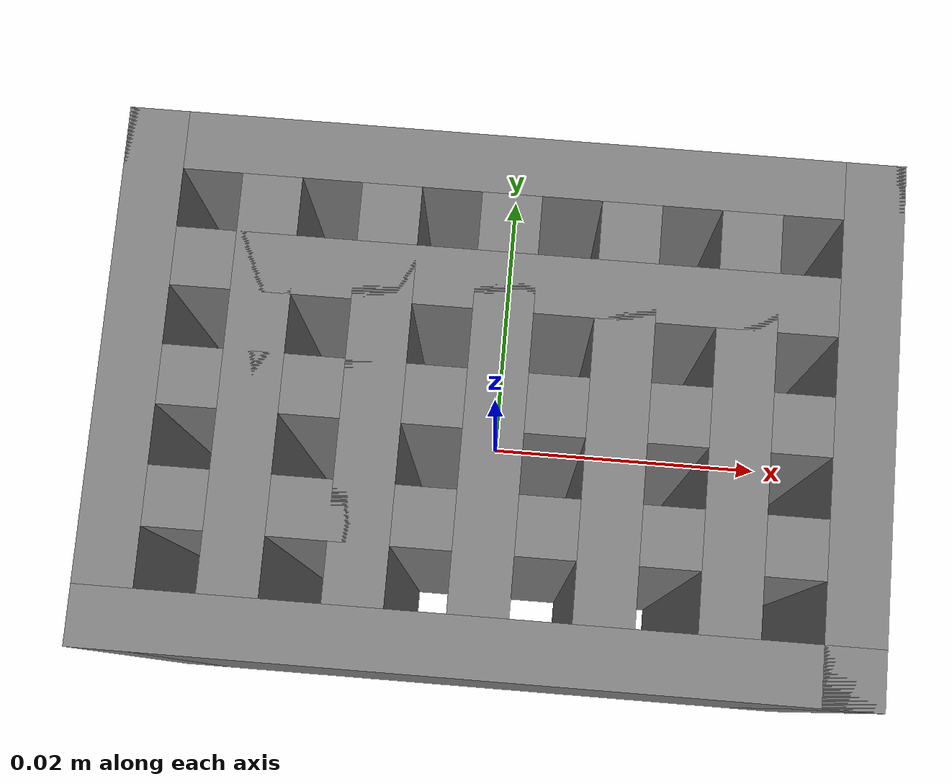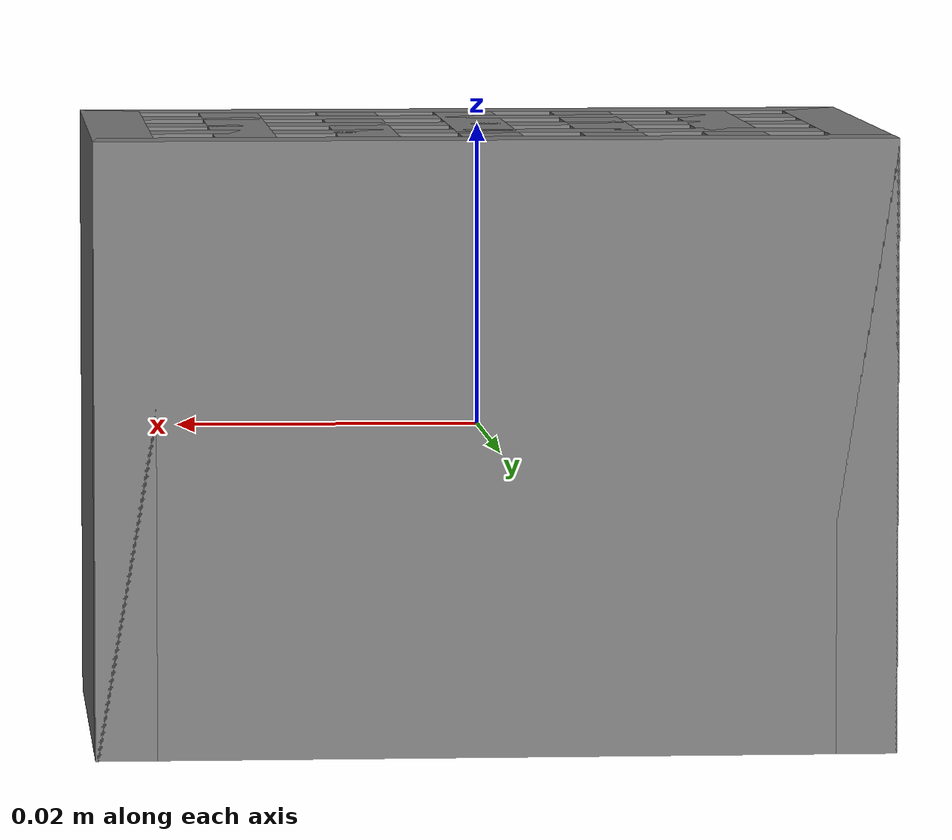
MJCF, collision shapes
<mujoco model="tip_box">
  <compiler angle="radian" meshdir="."/>

  <asset>
    <mesh name="tip_box-visual_up_visual" file="../../assets/rack/tip_box_24slot_vis/up_visual.obj" scale="0.001 0.001 0.001"/>
    <mesh name="tip_box-visual_low_visual" file="../../assets/rack/tip_box_24slot_vis/low_visual.obj" scale="0.001 0.001 0.001"/>
  </asset>

  <worldbody>
    <body name="tip_box">
      <geom size="0.026 0.002 0.02" pos="0 0.016 0" type="box" group="3"/>
      <geom size="0.026 0.002 0.02" pos="0 -0.016 0" type="box" group="3"/>
      <geom size="0.002 0.018 0.02" pos="0.024 0 0" type="box" group="3"/>
      <geom size="0.002 0.018 0.02" pos="-0.024 0 0" type="box" group="3"/>
      <geom size="0.026 0.018 0.02" pos="0 0 0.0204" type="plane" contype="2" conaffinity="0" group="4" rgba="1 0 0 1"/>
      <geom type="mesh" contype="0" conaffinity="0" group="2" mesh="tip_box-visual_up_visual"/>
      <geom type="mesh" contype="0" conaffinity="0" group="2" rgba="0 0 0 0.6" mesh="tip_box-visual_low_visual"/>
      <frame>
        <geom size="0.002 0.014 0.02" pos="-0.016 0 0" type="box" group="3"/>
      </frame>
      <frame>
        <geom size="0.002 0.014 0.02" pos="-0.008 0 0" type="box" group="3"/>
      </frame>
      <frame>
        <geom size="0.002 0.014 0.02" type="box" group="3"/>
      </frame>
      <frame>
        <geom size="0.002 0.014 0.02" pos="0.008 0 0" type="box" group="3"/>
      </frame>
      <frame>
        <geom size="0.002 0.014 0.02" pos="0.016 0 0" type="box" group="3"/>
      </frame>
      <frame>
        <geom size="0.022 0.002 0.02" pos="0 -0.008 0" type="box" group="3"/>
      </frame>
      <frame>
        <geom size="0.022 0.002 0.02" type="box" group="3"/>
      </frame>
      <frame>
        <geom size="0.022 0.002 0.02" pos="0 0.008 0" type="box" group="3"/>
      </frame>
    </body>
  </worldbody>
</mujoco>
